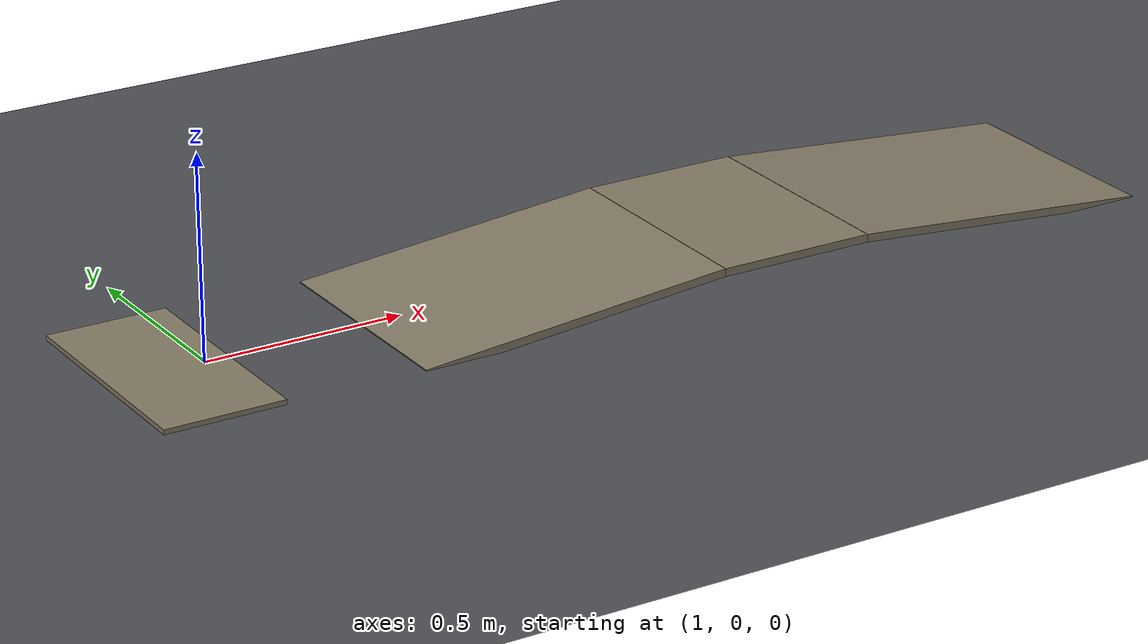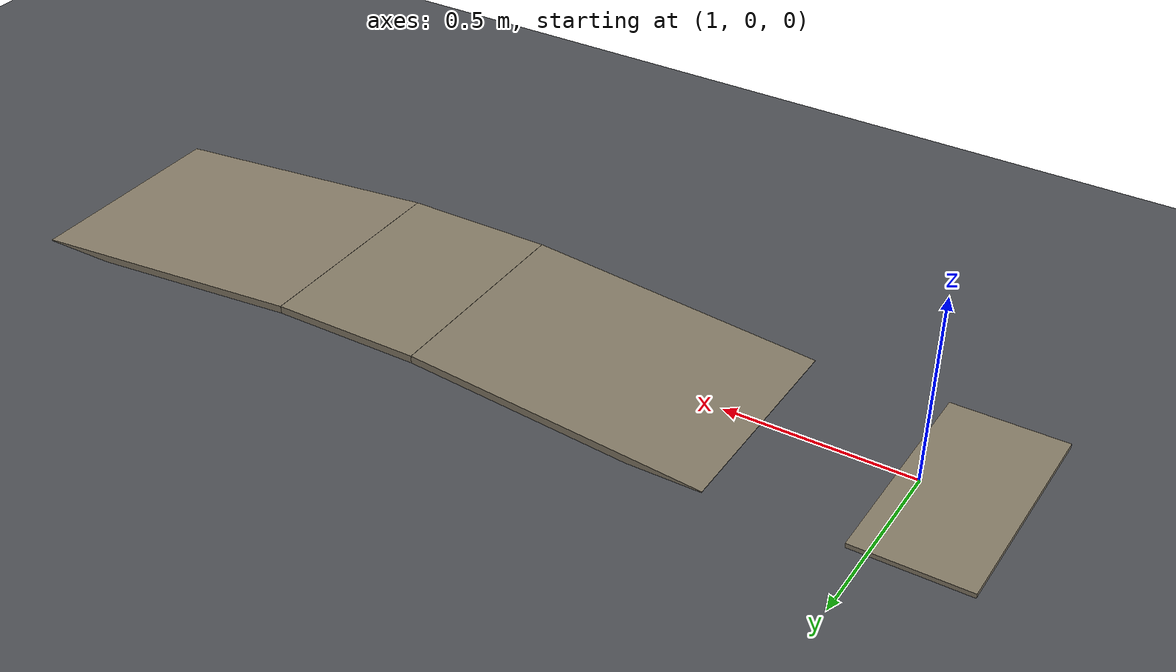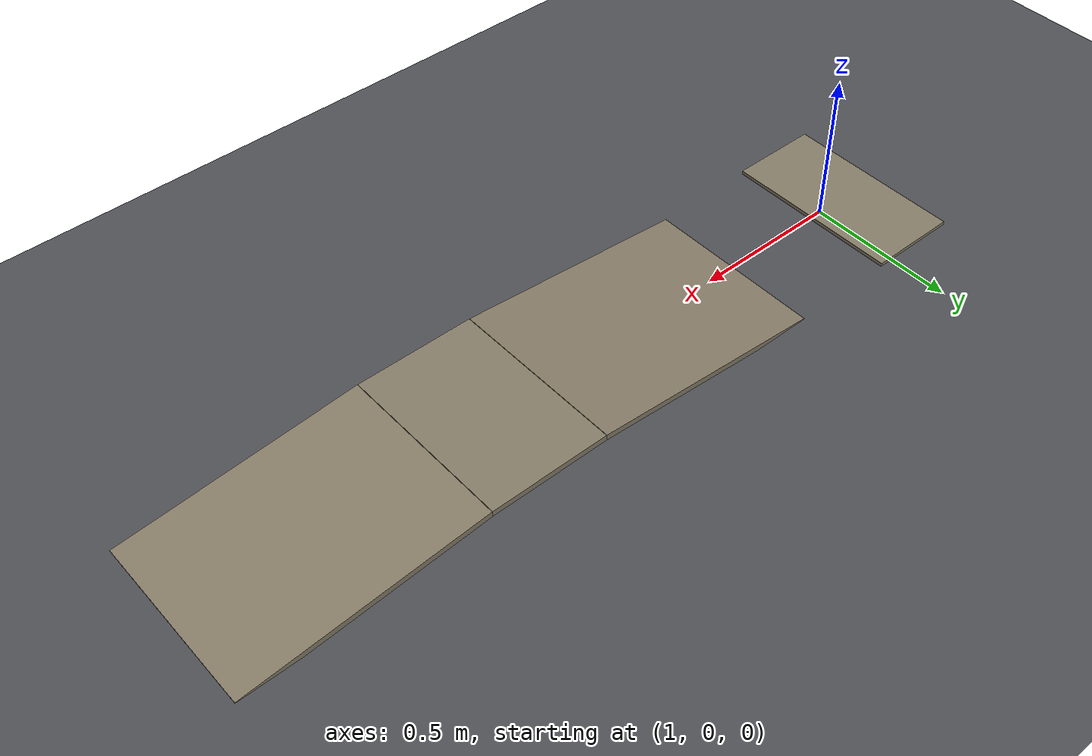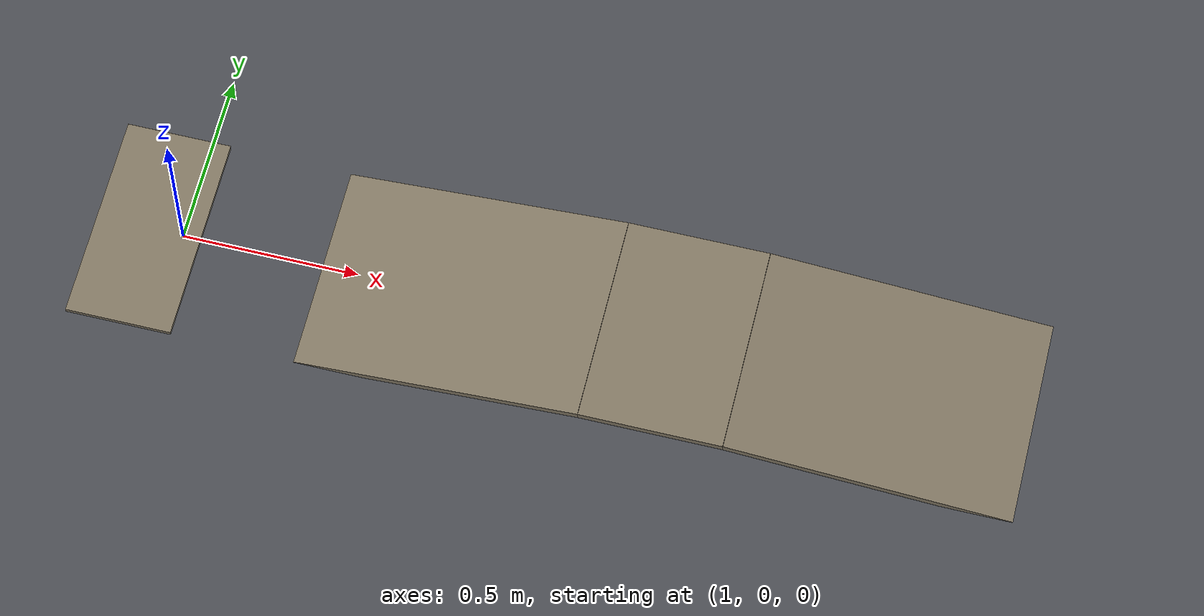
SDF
<?xml version="1.0"?>
<!-- Test course: flat floor, a 12 mm kerb at x = 0.9, and a hill from x = 1.4
     (5 degree ramp up, flat top, 5 degree ramp down). Frames: X forward, Z up. -->
<sdf version="1.9">
  <world name="course">
    <physics name="1ms" type="ignored">
      <max_step_size>0.001</max_step_size>
      <real_time_factor>1.0</real_time_factor>
    </physics>
    <plugin filename="gz-sim-physics-system" name="gz::sim::systems::Physics"/>
    <plugin filename="gz-sim-user-commands-system" name="gz::sim::systems::UserCommands"/>
    <plugin filename="gz-sim-scene-broadcaster-system" name="gz::sim::systems::SceneBroadcaster"/>
    <plugin filename="gz-sim-contact-system" name="gz::sim::systems::Contact"/>
    <plugin filename="gz-sim-imu-system" name="gz::sim::systems::Imu"/>

    <light type="directional" name="sun">
      <cast_shadows>true</cast_shadows>
      <pose>0 0 10 0 0 0</pose>
      <diffuse>0.9 0.9 0.9 1</diffuse>
      <specular>0.2 0.2 0.2 1</specular>
      <direction>-0.5 0.3 -0.9</direction>
    </light>

    <model name="ground">
      <static>true</static>
      <link name="link">
        <collision name="collision">
          <geometry><plane><normal>0 0 1</normal><size>40 40</size></plane></geometry>
          <surface><friction><ode><mu>0.8</mu><mu2>0.8</mu2></ode></friction></surface>
        </collision>
        <visual name="visual">
          <geometry><plane><normal>0 0 1</normal><size>40 40</size></plane></geometry>
          <material><ambient>0.30 0.31 0.33 1</ambient><diffuse>0.30 0.31 0.33 1</diffuse></material>
        </visual>
      </link>
    </model>

    <!-- 12 mm kerb: under the 35 mm foot lift, enough to tilt the body. -->
    <model name="kerb">
      <static>true</static>
      <pose>0.9 0 0.006 0 0 0</pose>
      <link name="link">
        <collision name="collision"><geometry><box><size>0.3 0.6 0.012</size></box></geometry>
          <surface><friction><ode><mu>0.8</mu><mu2>0.8</mu2></ode></friction></surface></collision>
        <visual name="visual"><geometry><box><size>0.3 0.6 0.012</size></box></geometry>
          <material><ambient>0.52 0.48 0.40 1</ambient><diffuse>0.52 0.48 0.40 1</diffuse></material></visual>
      </link>
    </model>

    <!-- Hill: 0.8 m ramps at 5 deg (rise 0.0697, run 0.7970) with a 0.4 m top.
         Pitch is negative for a ramp rising toward +X. -->
    <model name="ramp_up">
      <static>true</static>
      <pose>1.7985 0 0.02486 0 -0.08727 0</pose>
      <link name="link">
        <collision name="collision"><geometry><box><size>0.8 0.6 0.02</size></box></geometry>
          <surface><friction><ode><mu>0.8</mu><mu2>0.8</mu2></ode></friction></surface></collision>
        <visual name="visual"><geometry><box><size>0.8 0.6 0.02</size></box></geometry>
          <material><ambient>0.52 0.48 0.40 1</ambient><diffuse>0.52 0.48 0.40 1</diffuse></material></visual>
      </link>
    </model>
    <model name="hill_top">
      <static>true</static>
      <pose>2.3970 0 0.05972 0 0 0</pose>
      <link name="link">
        <collision name="collision"><geometry><box><size>0.4 0.6 0.02</size></box></geometry>
          <surface><friction><ode><mu>0.8</mu><mu2>0.8</mu2></ode></friction></surface></collision>
        <visual name="visual"><geometry><box><size>0.4 0.6 0.02</size></box></geometry>
          <material><ambient>0.52 0.48 0.40 1</ambient><diffuse>0.52 0.48 0.40 1</diffuse></material></visual>
      </link>
    </model>
    <model name="ramp_down">
      <static>true</static>
      <pose>2.9955 0 0.02486 0 0.08727 0</pose>
      <link name="link">
        <collision name="collision"><geometry><box><size>0.8 0.6 0.02</size></box></geometry>
          <surface><friction><ode><mu>0.8</mu><mu2>0.8</mu2></ode></friction></surface></collision>
        <visual name="visual"><geometry><box><size>0.8 0.6 0.02</size></box></geometry>
          <material><ambient>0.52 0.48 0.40 1</ambient><diffuse>0.52 0.48 0.40 1</diffuse></material></visual>
      </link>
    </model>
  </world>
</sdf>
